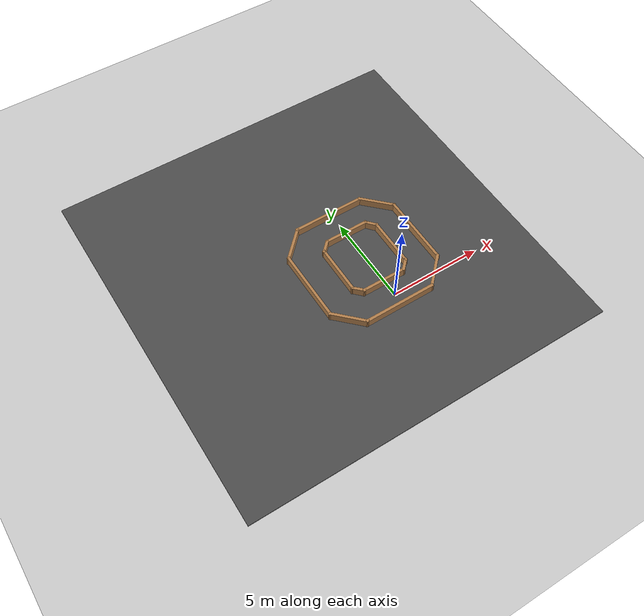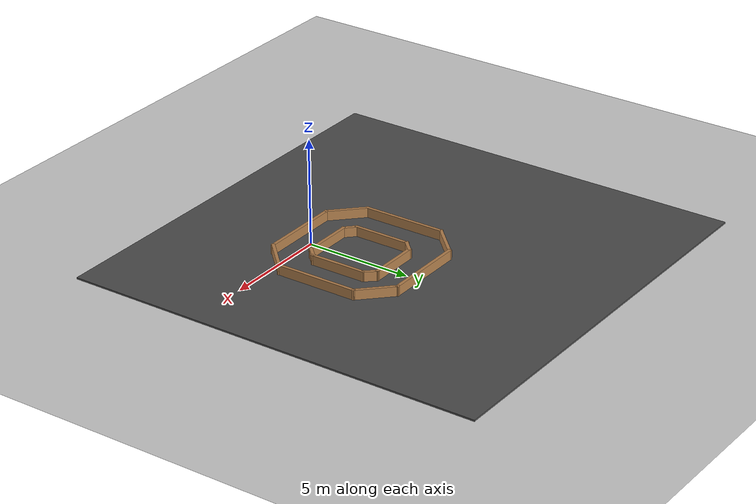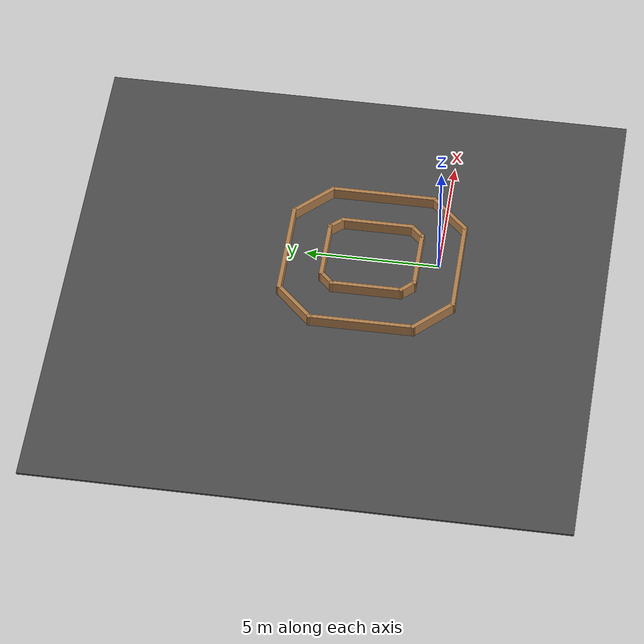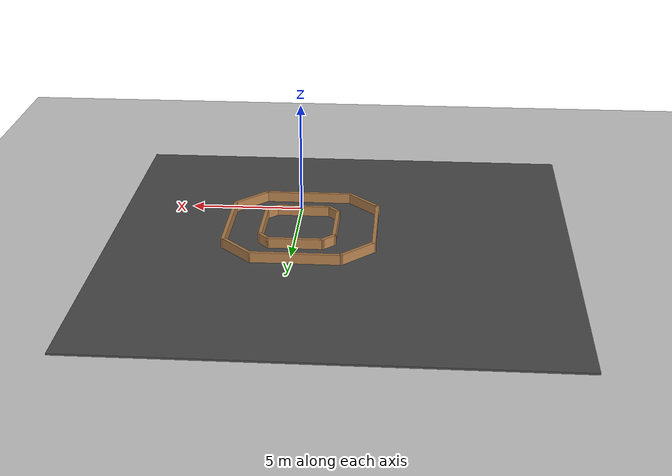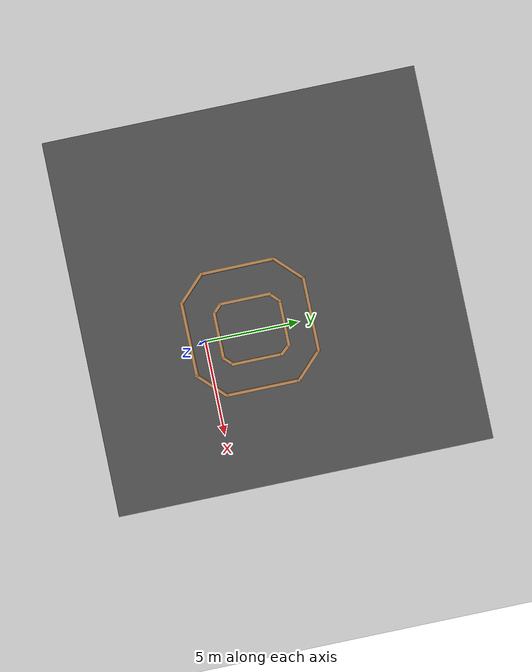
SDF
<sdf version="1.6">
 <world name="default">
  <light name="sun" type="directional">
   <pose>0 0 10 0 -0 0</pose>
   <diffuse>0.8 0.8 0.8 1</diffuse>
   <specular>0.1 0.1 0.1 1</specular>
   <attenuation>
    <range>1000</range>
    <constant>0.9</constant>
    <linear>0.01</linear>
    <quadratic>0.001</quadratic>
   </attenuation>
   <direction>-0.5 0.5 -1</direction>
  </light>
  <model name="ground_plane">
   <static>1</static>
   <link name="link">
    <collision name="collision">
     <geometry><plane><normal>0 0 1</normal><size>100 100</size></plane></geometry>
     <surface><friction><ode><mu>100</mu><mu2>50</mu2></ode></friction></surface>
    </collision>
    <visual name="visual">
     <cast_shadows>0</cast_shadows>
     <geometry><plane><normal>0 0 1</normal><size>100 100</size></plane></geometry>
     <material>
      <script><uri>file://media/materials/scripts/gazebo.material</uri><name>Gazebo/Grey</name></script>
     </material>
    </visual>
   </link>
  </model>
  <gravity>0 0 -9.8</gravity>
  <magnetic_field>6e-06 2.3e-05 -4.2e-05</magnetic_field>
  <atmosphere type="adiabatic"/>
  <physics name="default_physics" default="0" type="ode">
   <max_step_size>0.001</max_step_size>
   <real_time_factor>1</real_time_factor>
   <real_time_update_rate>1000</real_time_update_rate>
  </physics>
  <scene><ambient>0.4 0.4 0.4 1</ambient><background>0.7 0.7 0.7 1</background><shadows>1</shadows></scene>
  <spherical_coordinates>
   <surface_model>EARTH_WGS84</surface_model>
   <latitude_deg>0</latitude_deg>
   <longitude_deg>0</longitude_deg>
   <elevation>0</elevation>
   <heading_deg>0</heading_deg>
  </spherical_coordinates>
  <model name="test2">
   <pose>-0.260759 2.46573 0 0 -0 0</pose>
   <link name="Wall_1">
    <collision name="Wall_1_Collision">
     <geometry><box><size>4 0.15 0.5</size></box></geometry>
     <pose>0 0 0.25 0 -0 0</pose>
    </collision>
    <visual name="Wall_1_Visual">
     <pose>0 0 0.25 0 -0 0</pose>
     <geometry><box><size>4 0.15 0.5</size></box></geometry>
     <material>
      <script><uri>file://media/materials/scripts/gazebo.material</uri><name>Gazebo/Wood</name></script>
      <ambient>1 1 1 1</ambient>
     </material>
    </visual>
    <pose>0 3.2405 0 0 -0 0</pose>
   </link>
   <link name="Wall_10">
    <collision name="Wall_10_Collision">
     <geometry><box><size>2 0.15 0.5</size></box></geometry>
     <pose>0 0 0.25 0 -0 0</pose>
    </collision>
    <visual name="Wall_10_Visual">
     <pose>0 0 0.25 0 -0 0</pose>
     <geometry><box><size>2 0.15 0.5</size></box></geometry>
     <material>
      <script><uri>file://media/materials/scripts/gazebo.material</uri><name>Gazebo/Wood</name></script>
      <ambient>1 1 1 1</ambient>
     </material>
    </visual>
    <pose>-2.564 -2.5865 0 0 -0 2.35619</pose>
   </link>
   <link name="Wall_11">
    <collision name="Wall_11_Collision">
     <geometry><box><size>4.01503 0.15 0.5</size></box></geometry>
     <pose>0 0 0.25 0 -0 0</pose>
    </collision>
    <visual name="Wall_11_Visual">
     <pose>0 0 0.25 0 -0 0</pose>
     <geometry><box><size>4.01503 0.15 0.5</size></box></geometry>
     <material>
      <script><uri>file://media/materials/scripts/gazebo.material</uri><name>Gazebo/Wood</name></script>
      <ambient>1 1 1 1</ambient>
     </material>
    </visual>
    <pose>-3.2255 0 0 0 -0 1.57468</pose>
   </link>
   <link name="Wall_12">
    <collision name="Wall_12_Collision">
     <geometry><box><size>2 0.15 0.5</size></box></geometry>
     <pose>0 0 0.25 0 -0 0</pose>
    </collision>
    <visual name="Wall_12_Visual">
     <pose>0 0 0.25 0 -0 0</pose>
     <geometry><box><size>2 0.15 0.5</size></box></geometry>
     <material>
      <script><uri>file://media/materials/scripts/gazebo.material</uri><name>Gazebo/Wood</name></script>
      <ambient>1 1 1 1</ambient>
     </material>
    </visual>
    <pose>-2.579 2.5865 0 0 -0 0.785398</pose>
   </link>
   <link name="Wall_20">
    <collision name="Wall_20_Collision">
     <geometry><box><size>0.787195 0.15 0.5</size></box></geometry>
     <pose>0 0 0.25 0 -0 0</pose>
    </collision>
    <visual name="Wall_20_Visual">
     <pose>0 0 0.25 0 -0 0</pose>
     <geometry><box><size>0.787195 0.15 0.5</size></box></geometry>
     <material>
      <script><uri>file://media/materials/scripts/gazebo.material</uri><name>Gazebo/Wood</name></script>
      <ambient>1 1 1 1</ambient>
     </material>
    </visual>
    <pose>-1.258 1.561 0 0 -0 0.786508</pose>
   </link>
   <link name="Wall_21">
    <collision name="Wall_21_Collision">
     <geometry><box><size>2.5 0.15 0.5</size></box></geometry>
     <pose>0 0 0.25 0 -0 0</pose>
    </collision>
    <visual name="Wall_21_Visual">
     <pose>0 0 0.25 0 -0 0</pose>
     <geometry><box><size>2.5 0.15 0.5</size></box></geometry>
     <material>
      <script><uri>file://media/materials/scripts/gazebo.material</uri><name>Gazebo/Wood</name></script>
      <ambient>1 1 1 1</ambient>
     </material>
    </visual>
    <pose>0.142 1.7865 0 0 -0 0</pose>
   </link>
   <link name="Wall_22">
    <collision name="Wall_22_Collision">
     <geometry><box><size>0.751152 0.15 0.5</size></box></geometry>
     <pose>0 0 0.25 0 -0 0</pose>
    </collision>
    <visual name="Wall_22_Visual">
     <pose>0 0 0.25 0 -0 0</pose>
     <geometry><box><size>0.751152 0.15 0.5</size></box></geometry>
     <material>
      <script><uri>file://media/materials/scripts/gazebo.material</uri><name>Gazebo/Wood</name></script>
      <ambient>1 1 1 1</ambient>
     </material>
    </visual>
    <pose>1.516 1.561 0 0 0 -0.847744</pose>
   </link>
   <link name="Wall_23">
    <collision name="Wall_23_Collision">
     <geometry><box><size>2.75 0.15 0.5</size></box></geometry>
     <pose>0 0 0.25 0 -0 0</pose>
    </collision>
    <visual name="Wall_23_Visual">
     <pose>0 0 0.25 0 -0 0</pose>
     <geometry><box><size>2.75 0.15 0.5</size></box></geometry>
     <material>
      <script><uri>file://media/materials/scripts/gazebo.material</uri><name>Gazebo/Wood</name></script>
      <ambient>1 1 1 1</ambient>
     </material>
    </visual>
    <pose>1.715 0.0355 0 0 0 -1.5708</pose>
   </link>
   <link name="Wall_24">
    <collision name="Wall_24_Collision">
     <geometry><box><size>0.75 0.15 0.5</size></box></geometry>
     <pose>0 0 0.25 0 -0 0</pose>
    </collision>
    <visual name="Wall_24_Visual">
     <pose>0 0 0.25 0 -0 0</pose>
     <geometry><box><size>0.75 0.15 0.5</size></box></geometry>
     <material>
      <script><uri>file://media/materials/scripts/gazebo.material</uri><name>Gazebo/Wood</name></script>
      <ambient>1 1 1 1</ambient>
     </material>
    </visual>
    <pose>1.503 -1.4765 0 0 0 -2.35619</pose>
   </link>
   <link name="Wall_33">
    <collision name="Wall_33_Collision">
     <geometry><box><size>2.5 0.15 0.5</size></box></geometry>
     <pose>0 0 0.25 0 -0 0</pose>
    </collision>
    <visual name="Wall_33_Visual">
     <pose>0 0 0.25 0 -0 0</pose>
     <geometry><box><size>2.5 0.15 0.5</size></box></geometry>
     <material>
      <script><uri>file://media/materials/scripts/gazebo.material</uri><name>Gazebo/Wood</name></script>
      <ambient>1 1 1 1</ambient>
     </material>
    </visual>
    <pose>0.116 -1.6885 0 0 -0 3.14159</pose>
   </link>
   <link name="Wall_34">
    <collision name="Wall_34_Collision">
     <geometry><box><size>0.749627 0.15 0.5</size></box></geometry>
     <pose>0 0 0.25 0 -0 0</pose>
    </collision>
    <visual name="Wall_34_Visual">
     <pose>0 0 0.25 0 -0 0</pose>
     <geometry><box><size>0.749627 0.15 0.5</size></box></geometry>
     <material>
      <script><uri>file://media/materials/scripts/gazebo.material</uri><name>Gazebo/Wood</name></script>
      <ambient>1 1 1 1</ambient>
     </material>
    </visual>
    <pose>-1.271 -1.4765 0 0 -0 2.35619</pose>
   </link>
   <link name="Wall_35">
    <collision name="Wall_35_Collision">
     <geometry><box><size>2.75 0.15 0.5</size></box></geometry>
     <pose>0 0 0.25 0 -0 0</pose>
    </collision>
    <visual name="Wall_35_Visual">
     <pose>0 0 0.25 0 -0 0</pose>
     <geometry><box><size>2.75 0.15 0.5</size></box></geometry>
     <material>
      <script><uri>file://media/materials/scripts/gazebo.material</uri><name>Gazebo/Wood</name></script>
      <ambient>1 1 1 1</ambient>
     </material>
    </visual>
    <pose>-1.483 0.0355 0 0 -0 1.5708</pose>
   </link>
   <link name="Wall_4">
    <collision name="Wall_4_Collision">
     <geometry><box><size>2 0.15 0.5</size></box></geometry>
     <pose>0 0 0.25 0 -0 0</pose>
    </collision>
    <visual name="Wall_4_Visual">
     <pose>0 0 0.25 0 -0 0</pose>
     <geometry><box><size>2 0.15 0.5</size></box></geometry>
     <material>
      <script><uri>file://media/materials/scripts/gazebo.material</uri><name>Gazebo/Wood</name></script>
      <ambient>1 1 1 1</ambient>
     </material>
    </visual>
    <pose>2.579 2.5865 0 0 0 -0.785398</pose>
   </link>
   <link name="Wall_5">
    <collision name="Wall_5_Collision">
     <geometry><box><size>4 0.15 0.5</size></box></geometry>
     <pose>0 0 0.25 0 -0 0</pose>
    </collision>
    <visual name="Wall_5_Visual">
     <pose>0 0 0.25 0 -0 0</pose>
     <geometry><box><size>4 0.15 0.5</size></box></geometry>
     <material>
      <script><uri>file://media/materials/scripts/gazebo.material</uri><name>Gazebo/Wood</name></script>
      <ambient>1 1 1 1</ambient>
     </material>
    </visual>
    <pose>3.233 0.0075 0 0 0 -1.5708</pose>
   </link>
   <link name="Wall_8">
    <collision name="Wall_8_Collision">
     <geometry><box><size>2 0.15 0.5</size></box></geometry>
     <pose>0 0 0.25 0 -0 0</pose>
    </collision>
    <visual name="Wall_8_Visual">
     <pose>0 0 0.25 0 -0 0</pose>
     <geometry><box><size>2 0.15 0.5</size></box></geometry>
     <material>
      <script><uri>file://media/materials/scripts/gazebo.material</uri><name>Gazebo/Wood</name></script>
      <ambient>1 1 1 1</ambient>
     </material>
    </visual>
    <pose>2.579 -2.5715 0 0 0 -2.35619</pose>
   </link>
   <link name="Wall_9">
    <collision name="Wall_9_Collision">
     <geometry><box><size>3.98503 0.15 0.5</size></box></geometry>
     <pose>0 0 0.25 0 -0 0</pose>
    </collision>
    <visual name="Wall_9_Visual">
     <pose>0 0 0.25 0 -0 0</pose>
     <geometry><box><size>3.98503 0.15 0.5</size></box></geometry>
     <material>
      <script><uri>file://media/materials/scripts/gazebo.material</uri><name>Gazebo/Wood</name></script>
      <ambient>1 1 1 1</ambient>
     </material>
    </visual>
    <pose>0.0075 -3.233 0 0 0 -3.13768</pose>
   </link>
   <static>1</static>
  </model>
  <model name="asphalt_plane">
   <static>1</static>
   <link name="link">
    <collision name="collision"><geometry><box><size>20 20 0.1</size></box></geometry></collision>
    <visual name="visual">
     <cast_shadows>0</cast_shadows>
     <geometry><box><size>20 20 0.1</size></box></geometry>
     <material>
      <script>
       <uri>model://asphalt_plane/materials/scripts</uri>
       <uri>model://asphalt_plane/materials/textures</uri>
       <name>vrc/asphalt</name>
      </script>
     </material>
    </visual>
   </link>
   <pose>-1.94804 3.72296 0 0 -0 0</pose>
  </model>
 </world>
</sdf>
